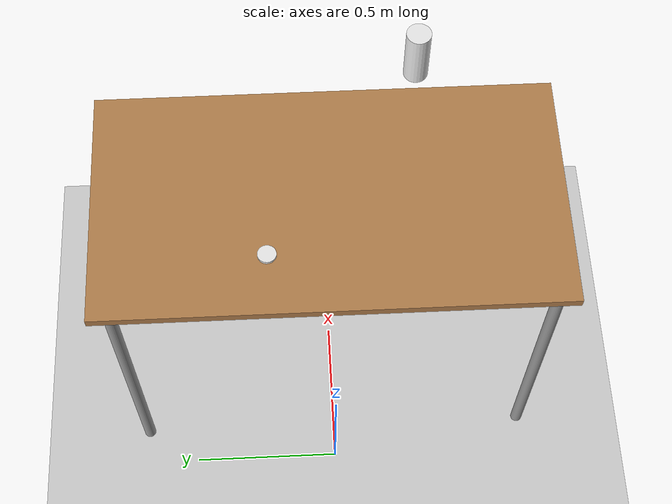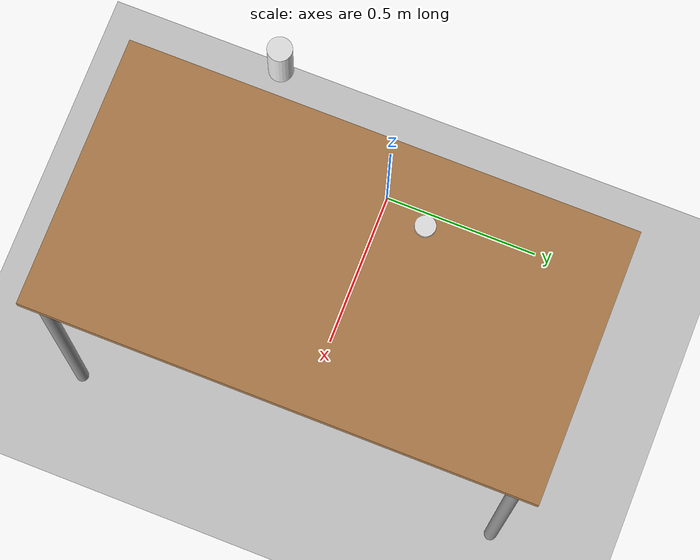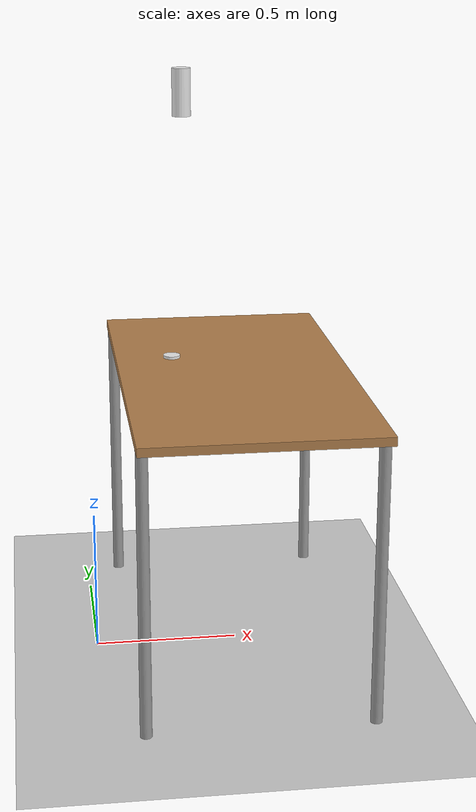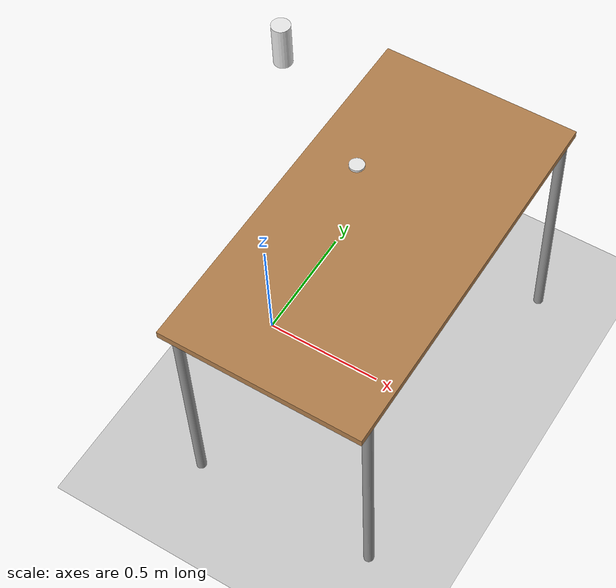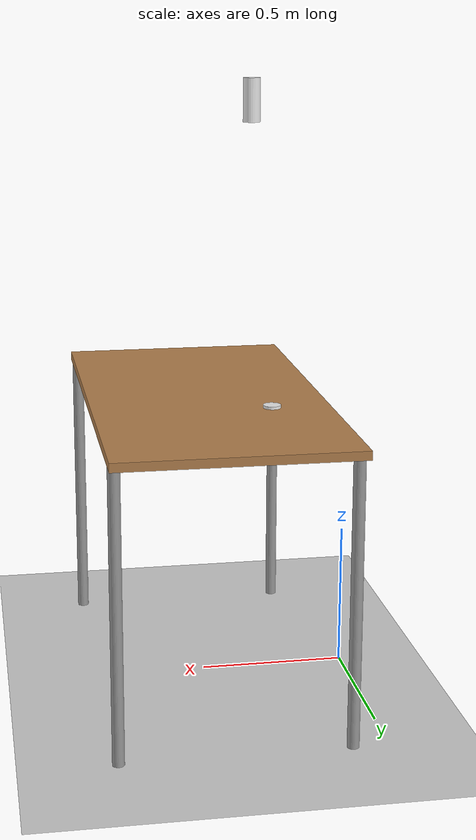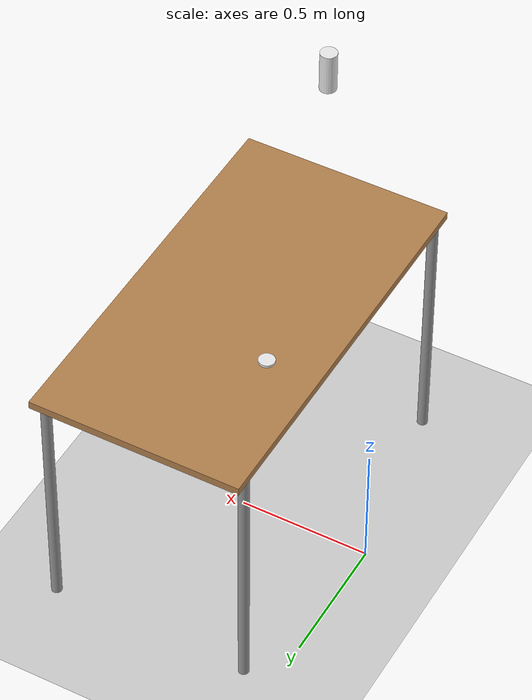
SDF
<?xml version="1.0" ?>
<sdf version="1.5">
  <world name="default">
    <include>
      <uri>model://sun</uri>
    </include>
    <include>
      <uri>model://ground_plane</uri>
    </include>
    <include>
      <name>table</name>
      <uri>model://table</uri>
      <static>true</static>
      <pose>0.5 0 0 0 0 1.57</pose>
    </include>

    <model name='can'>
      <pose>0.3 -0.2 2 0 0 0</pose>
      <link name='link'>
        <inertial>
          <mass>0.1</mass>
          <inertia>
            <ixx>1e-4</ixx>
            <ixy>0</ixy>
            <ixz>0</ixz>
            <iyy>1e-4</iyy>
            <iyz>0</iyz>
            <izz>1e-4</izz>
          </inertia>
        </inertial>
        <collision name='collision'>
          <geometry>
            <cylinder>
              <radius>0.03</radius>
              <length>0.15</length>
            </cylinder>
          </geometry>
          <max_contacts>10</max_contacts>
          <surface>
            <bounce/>
            <friction>
              <ode/>
            </friction>
            <contact>
              <ode/>
            </contact>
          </surface>
        </collision>
        <visual name='visual'>
          <geometry>
            <cylinder>
              <radius>0.03</radius>
              <length>0.15</length>
            </cylinder>
          </geometry>
          <material>
            <script>
              <uri>file://media/materials/scripts/gazebo.material</uri>
              <name>Gazebo/White</name>
            </script>
          </material>
        </visual>
        <velocity_decay>
          <linear>0</linear>
          <angular>0</angular>
        </velocity_decay>
        <self_collide>0</self_collide>
        <kinematic>0</kinematic>
        <gravity>1</gravity>
      </link>
      <static>0</static>
    </model>

    <model name='static_can'>
      <pose>0.3 0.2 1.02 0 0 0</pose>
      <link name='link'>
        <inertial>
          <mass>0.1</mass>
          <inertia>
            <ixx>1e-4</ixx>
            <ixy>0</ixy>
            <ixz>0</ixz>
            <iyy>1e-4</iyy>
            <iyz>0</iyz>
            <izz>1e-4</izz>
          </inertia>
        </inertial>
        <collision name='collision'>
          <geometry>
            <cylinder>
              <radius>0.03</radius>
              <length>0.01</length>
            </cylinder>
          </geometry>
          <max_contacts>10</max_contacts>
          <surface>
            <bounce/>
            <friction>
              <ode/>
            </friction>
            <contact>
              <ode/>
            </contact>
          </surface>
        </collision>
        <visual name='visual'>
          <geometry>
            <cylinder>
              <radius>0.03</radius>
              <length>0.01</length>
            </cylinder>
          </geometry>
          <material>
            <script>
              <uri>file://media/materials/scripts/gazebo.material</uri>
              <name>Gazebo/White</name>
            </script>
          </material>
        </visual>
        <velocity_decay>
          <linear>0</linear>
          <angular>0</angular>
        </velocity_decay>
        <self_collide>0</self_collide>
        <kinematic>0</kinematic>
        <gravity>1</gravity>
      </link>
      <static>1</static>
    </model>
  </world>
</sdf>

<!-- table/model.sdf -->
<sdf version="1.5">
  <model name="table">
    <static>true</static>
    <link name="link">
      <collision name="surface">
        <pose>0 0 1.0 0 0 0</pose>
        <geometry>
          <box>
            <size>1.5 0.8 0.03</size>
          </box>
        </geometry>
        <surface>
          <friction>
            <ode>
              <mu>0.6</mu>
              <mu2>0.6</mu2>
            </ode>
          </friction>
        </surface>
      </collision>
      <visual name="visual1">
        <pose>0 0 1.0 0 0 0</pose>
        <geometry>
          <box>
            <size>1.5 0.8 0.03</size>
          </box>
        </geometry>
        <material>
          <script>
            <uri>model://media/materials/scripts/gazebo.material</uri>
            <name>Gazebo/Wood</name>
          </script>
        </material>
      </visual>
      <collision name="front_left_leg">
        <pose>0.68 0.38 0.5 0 0 0</pose>
        <geometry>
          <cylinder>
            <radius>0.02</radius>
            <length>1.0</length>
          </cylinder>
        </geometry>
      </collision>
      <visual name="front_left_leg">
        <pose>0.68 0.38 0.5 0 0 0</pose>
        <geometry>
          <cylinder>
            <radius>0.02</radius>
            <length>1.0</length>
          </cylinder>
        </geometry>
        <material>
          <script>
            <uri>model://media/materials/scripts/gazebo.material</uri>
            <name>Gazebo/Grey</name>
          </script>
        </material>
      </visual>
      <collision name="front_right_leg">
        <pose>0.68 -0.38 0.5 0 0 0</pose>
        <geometry>
          <cylinder>
            <radius>0.02</radius>
            <length>1.0</length>
          </cylinder>
        </geometry>
      </collision>
      <visual name="front_right_leg">
        <pose>0.68 -0.38 0.5 0 0 0</pose>
        <geometry>
          <cylinder>
            <radius>0.02</radius>
            <length>1.0</length>
          </cylinder>
        </geometry>
        <material>
          <script>
            <uri>model://media/materials/scripts/gazebo.material</uri>
            <name>Gazebo/Grey</name>
          </script>
        </material>
      </visual>
      <collision name="back_right_leg">
        <pose>-0.68 -0.38 0.5 0 0 0</pose>
        <geometry>
          <cylinder>
            <radius>0.02</radius>
            <length>1.0</length>
          </cylinder>
        </geometry>
      </collision>
      <visual name="back_right_leg">
        <pose>-0.68 -0.38 0.5 0 0 0</pose>
        <geometry>
          <cylinder>
            <radius>0.02</radius>
            <length>1.0</length>
          </cylinder>
        </geometry>
        <material>
          <script>
            <uri>model://media/materials/scripts/gazebo.material</uri>
            <name>Gazebo/Grey</name>
          </script>
        </material>
      </visual>
      <collision name="back_left_leg">
        <pose>-0.68 0.38 0.5 0 0 0</pose>
        <geometry>
          <cylinder>
            <radius>0.02</radius>
            <length>1.0</length>
          </cylinder>
        </geometry>
      </collision>
      <visual name="back_left_leg">
        <pose>-0.68 0.38 0.5 0 0 0</pose>
        <geometry>
          <cylinder>
            <radius>0.02</radius>
            <length>1.0</length>
          </cylinder>
        </geometry>
        <material>
          <script>
            <uri>model://media/materials/scripts/gazebo.material</uri>
            <name>Gazebo/Grey</name>
          </script>
        </material>
      </visual>
    </link>
  </model>
</sdf>
